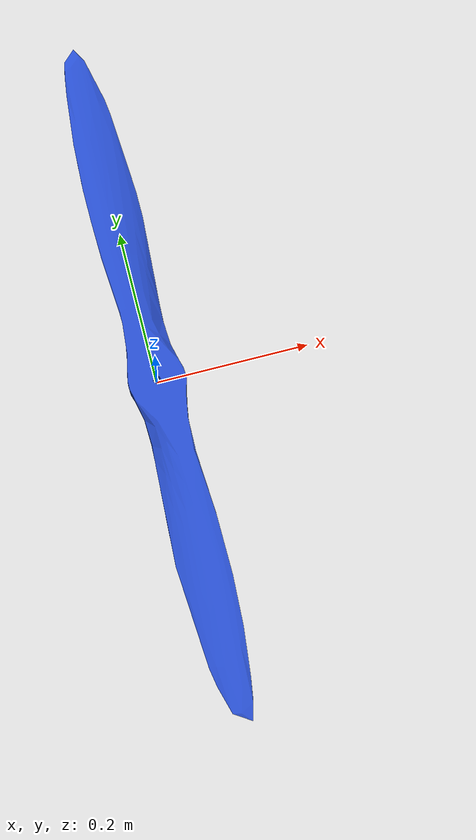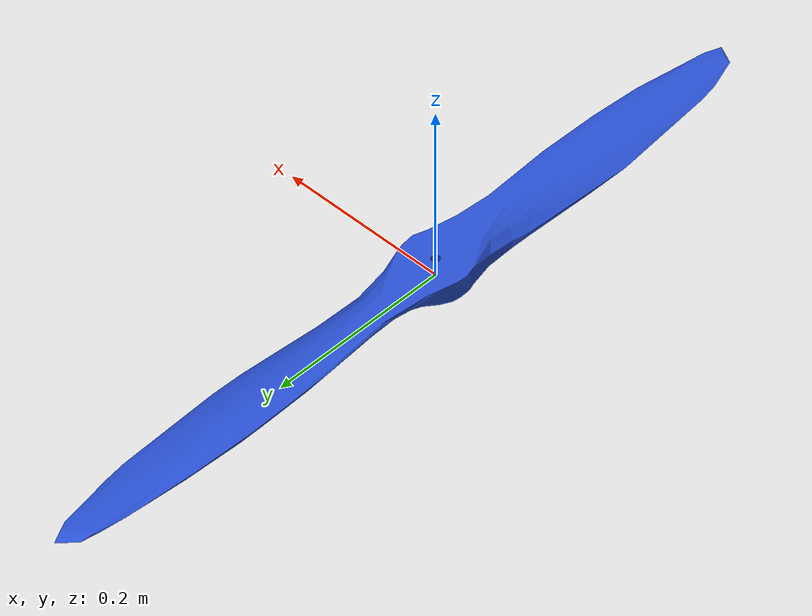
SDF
<?xml version="1.0" ?>

  <sdf version="1.5">
    <model name="tsduav_t4_nosaw_prop">

      <link name="prop">
      <pose>0 0 0 0 0 0</pose>
      <inertial>
        <pose>0 0 0 0 0 0</pose>
        <mass>0.025</mass>
        <inertia>
          <ixx>9.75e-06</ixx>
          <ixy>0</ixy>
          <ixz>0</ixz>
          <iyy>0.000166704</iyy>
          <iyz>0</iyz>
          <izz>0.000167604</izz>
        </inertia>
      </inertial>
      <collision name="prop_collision">
        <pose>0 0 0 0 -0 0</pose>
        <geometry>
          <mesh>
            <uri>model://tsduav_t4_nosaw_prop/meshes/prop.obj</uri>
          </mesh>
        </geometry>
        <surface>
          <contact>
            <ode>
              <min_depth>0.001</min_depth>
            </ode>
          </contact>
          <friction>
            <ode />
          </friction>
        </surface>
      </collision>
      <visual name="prop_visual">
        <geometry>
          <mesh>
            <uri>model://tsduav_t4_nosaw_prop/meshes/prop.obj</uri>
          </mesh>
        </geometry>
        <material>
          <script>
            <name>Gazebo/Blue</name>
          </script>
        </material>
      </visual>
      <gravity>1</gravity>
      <velocity_decay />
      <self_collide>0</self_collide>
    </link>

  </model>
</sdf>
